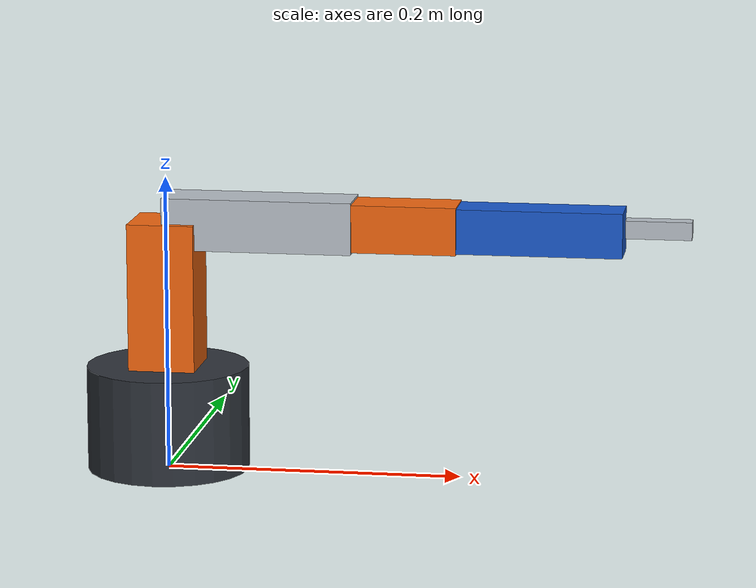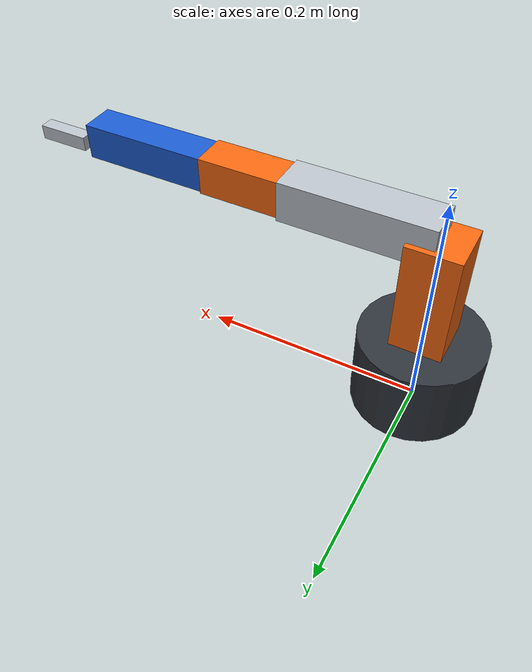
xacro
<?xml version="1.0"?>
<robot name="assignment_arm" xmlns:xacro="http://www.ros.org/wiki/xacro">
  <!-- Dimensions are in metres and follow the assignment drawing. -->
  <xacro:property name="base_height" value="0.071"/>
  <xacro:property name="l1_length" value="0.100"/>
  <xacro:property name="l2_length" value="0.128"/>
  <xacro:property name="l3_length" value="0.070"/>
  <xacro:property name="tool_length" value="0.110"/>

  <material name="dark_grey"><color rgba="0.18 0.20 0.23 1"/></material>
  <material name="orange"><color rgba="0.95 0.40 0.06 1"/></material>
  <material name="silver"><color rgba="0.72 0.75 0.78 1"/></material>
  <material name="blue"><color rgba="0.10 0.35 0.80 1"/></material>

  <xacro:macro name="box_inertial" params="mass x y z origin">
    <inertial>
      <origin xyz="${origin}" rpy="0 0 0"/>
      <mass value="${mass}"/>
      <inertia
        ixx="${mass * (y*y + z*z) / 12.0}" ixy="0" ixz="0"
        iyy="${mass * (x*x + z*z) / 12.0}" iyz="0"
        izz="${mass * (x*x + y*y) / 12.0}"/>
    </inertial>
  </xacro:macro>

  <xacro:macro name="cylinder_inertial" params="mass radius length origin">
    <inertial>
      <origin xyz="${origin}" rpy="0 0 0"/>
      <mass value="${mass}"/>
      <inertia
        ixx="${mass * (3*radius*radius + length*length) / 12.0}" ixy="0" ixz="0"
        iyy="${mass * (3*radius*radius + length*length) / 12.0}" iyz="0"
        izz="${mass * radius*radius / 2.0}"/>
    </inertial>
  </xacro:macro>

  <link name="base_link">
    <visual>
      <origin xyz="0 0 ${base_height / 2.0}"/>
      <geometry><cylinder radius="0.055" length="${base_height}"/></geometry>
      <material name="dark_grey"/>
    </visual>
    <collision>
      <origin xyz="0 0 ${base_height / 2.0}"/>
      <geometry><cylinder radius="0.055" length="${base_height}"/></geometry>
    </collision>
    <xacro:cylinder_inertial mass="0.50" radius="0.055" length="${base_height}"
      origin="0 0 ${base_height / 2.0}"/>
  </link>

  <link name="link1">
    <visual>
      <origin xyz="0 0 ${l1_length / 2.0}"/>
      <geometry><box size="0.045 0.045 ${l1_length}"/></geometry>
      <material name="orange"/>
    </visual>
    <collision>
      <origin xyz="0 0 ${l1_length / 2.0}"/>
      <geometry><box size="0.045 0.045 ${l1_length}"/></geometry>
    </collision>
    <xacro:box_inertial mass="0.30" x="0.045" y="0.045" z="${l1_length}"
      origin="0 0 ${l1_length / 2.0}"/>
  </link>

  <joint name="joint1" type="revolute">
    <parent link="base_link"/>
    <child link="link1"/>
    <origin xyz="0 0 ${base_height}" rpy="0 0 0"/>
    <axis xyz="0 0 1"/>
    <limit lower="-1.5708" upper="1.5708" effort="10" velocity="1.5"/>
    <dynamics damping="0.15" friction="0.05"/>
  </joint>

  <link name="link2">
    <visual>
      <origin xyz="${l2_length / 2.0} 0 0"/>
      <geometry><box size="${l2_length} 0.035 0.035"/></geometry>
      <material name="silver"/>
    </visual>
    <collision>
      <origin xyz="${l2_length / 2.0} 0 0"/>
      <geometry><box size="${l2_length} 0.035 0.035"/></geometry>
    </collision>
    <xacro:box_inertial mass="0.25" x="${l2_length}" y="0.035" z="0.035"
      origin="${l2_length / 2.0} 0 0"/>
  </link>

  <joint name="joint2" type="revolute">
    <parent link="link1"/>
    <child link="link2"/>
    <origin xyz="0 0 ${l1_length}" rpy="0 0 0"/>
    <axis xyz="0 1 0"/>
    <limit lower="-1.5708" upper="1.5708" effort="10" velocity="1.5"/>
    <dynamics damping="0.15" friction="0.05"/>
  </joint>

  <link name="link3">
    <visual>
      <origin xyz="${l3_length / 2.0} 0 0"/>
      <geometry><box size="${l3_length} 0.032 0.032"/></geometry>
      <material name="orange"/>
    </visual>
    <collision>
      <origin xyz="${l3_length / 2.0} 0 0"/>
      <geometry><box size="${l3_length} 0.032 0.032"/></geometry>
    </collision>
    <xacro:box_inertial mass="0.16" x="${l3_length}" y="0.032" z="0.032"
      origin="${l3_length / 2.0} 0 0"/>
  </link>

  <joint name="joint3" type="revolute">
    <parent link="link2"/>
    <child link="link3"/>
    <origin xyz="${l2_length} 0 0" rpy="0 0 0"/>
    <axis xyz="0 1 0"/>
    <limit lower="-1.5708" upper="1.5708" effort="8" velocity="1.5"/>
    <dynamics damping="0.12" friction="0.04"/>
  </joint>

  <link name="end_effector">
    <visual>
      <origin xyz="${tool_length / 2.0} 0 0"/>
      <geometry><box size="${tool_length} 0.030 0.030"/></geometry>
      <material name="blue"/>
    </visual>
    <collision>
      <origin xyz="${tool_length / 2.0} 0 0"/>
      <geometry><box size="${tool_length} 0.030 0.030"/></geometry>
    </collision>
    <xacro:box_inertial mass="0.12" x="${tool_length}" y="0.030" z="0.030"
      origin="${tool_length / 2.0} 0 0"/>
  </link>

  <joint name="joint4" type="revolute">
    <parent link="link3"/>
    <child link="end_effector"/>
    <origin xyz="${l3_length} 0 0" rpy="0 0 0"/>
    <axis xyz="0 1 0"/>
    <limit lower="-1.5708" upper="1.5708" effort="6" velocity="1.5"/>
    <dynamics damping="0.10" friction="0.03"/>
  </joint>

  <link name="gripper_finger">
    <visual>
      <origin xyz="0.022 0 0"/>
      <geometry><box size="0.044 0.012 0.012"/></geometry>
      <material name="silver"/>
    </visual>
    <collision>
      <origin xyz="0.022 0 0"/>
      <geometry><box size="0.044 0.012 0.012"/></geometry>
    </collision>
    <xacro:box_inertial mass="0.04" x="0.044" y="0.012" z="0.012"
      origin="0.022 0 0"/>
  </link>

  <joint name="joint5" type="revolute">
    <parent link="end_effector"/>
    <child link="gripper_finger"/>
    <origin xyz="${tool_length} 0.015 0" rpy="0 0 0"/>
    <axis xyz="0 0 1"/>
    <limit lower="-1.5708" upper="1.5708" effort="3" velocity="2.0"/>
    <dynamics damping="0.08" friction="0.02"/>
  </joint>

  <ros2_control name="GazeboSimSystem" type="system">
    <hardware>
      <plugin>gz_ros2_control/GazeboSimSystem</plugin>
    </hardware>
    <xacro:macro name="controlled_joint" params="name">
      <joint name="${name}">
        <command_interface name="position">
          <param name="min">-1.5708</param>
          <param name="max">1.5708</param>
        </command_interface>
        <state_interface name="position"/>
        <state_interface name="velocity"/>
      </joint>
    </xacro:macro>
    <xacro:controlled_joint name="joint1"/>
    <xacro:controlled_joint name="joint2"/>
    <xacro:controlled_joint name="joint3"/>
    <xacro:controlled_joint name="joint4"/>
    <xacro:controlled_joint name="joint5"/>
  </ros2_control>

  <gazebo>
    <plugin filename="libgz_ros2_control-system.so"
            name="gz_ros2_control::GazeboSimROS2ControlPlugin">
      <parameters>$(find arm_assignment)/config/controllers.yaml</parameters>
    </plugin>
  </gazebo>
</robot>
